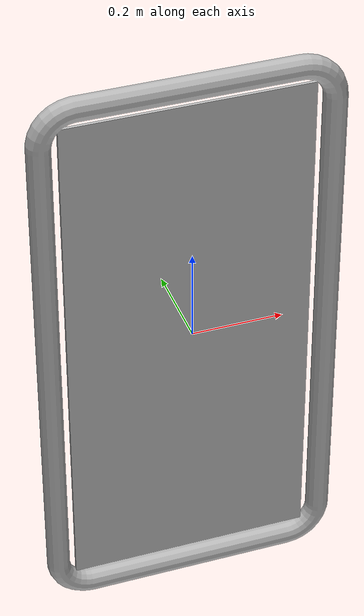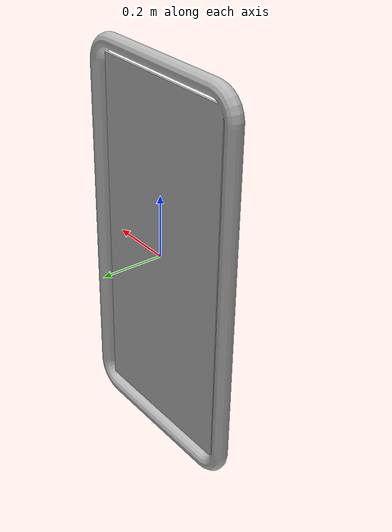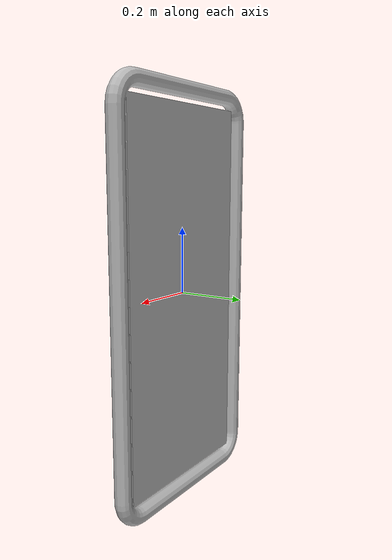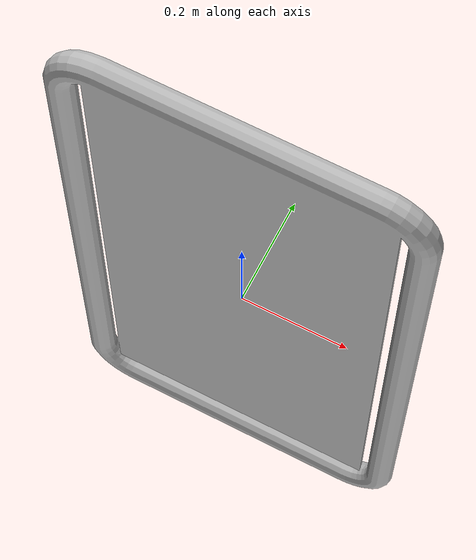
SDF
<?xml version="1.0" ?>
<sdf version="1.5">

<model name="buoy">
  <static>true</static>
  <link name="buoy_link">

  <visual name="buoy">
    <pose>0 0 0 0 0 0</pose>
    <geometry>
      <mesh><uri>model://buoy/meshes/buoy.obj</uri><scale>1 1 1</scale></mesh>
    </geometry>
  </visual>

  <collision name="buoy">
    <pose>0 0 0 0 0 0</pose>
    <geometry>
      <box><size>0.66 0.04 1.28</size></box>
    </geometry>
  </collision>

  </link>
</model>
</sdf>
